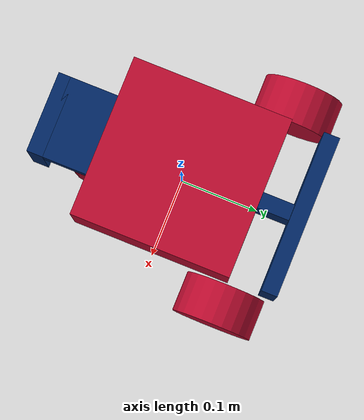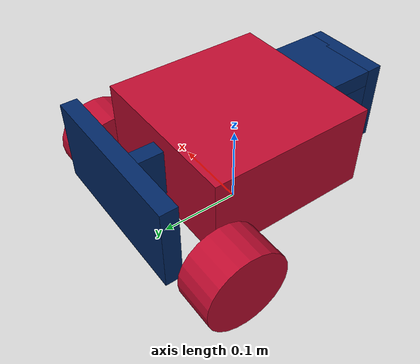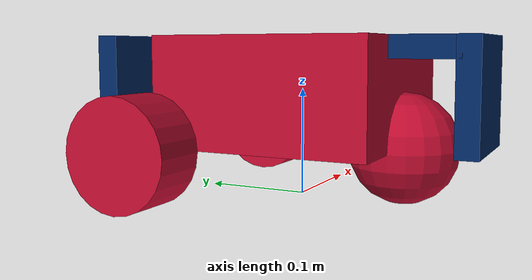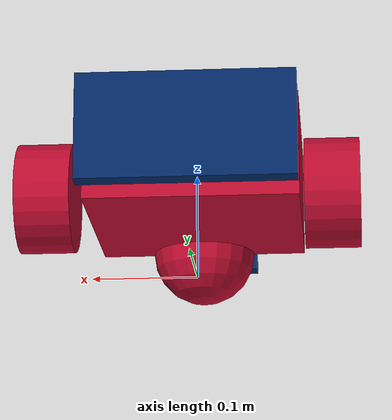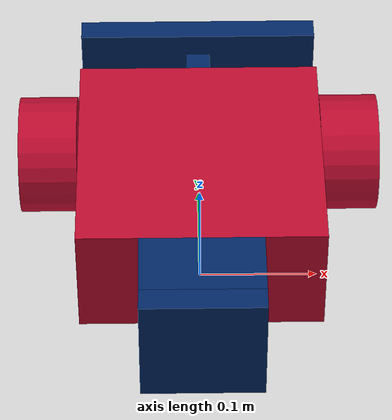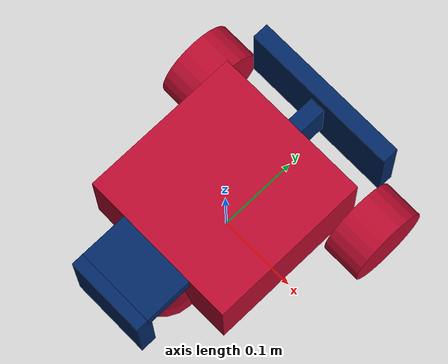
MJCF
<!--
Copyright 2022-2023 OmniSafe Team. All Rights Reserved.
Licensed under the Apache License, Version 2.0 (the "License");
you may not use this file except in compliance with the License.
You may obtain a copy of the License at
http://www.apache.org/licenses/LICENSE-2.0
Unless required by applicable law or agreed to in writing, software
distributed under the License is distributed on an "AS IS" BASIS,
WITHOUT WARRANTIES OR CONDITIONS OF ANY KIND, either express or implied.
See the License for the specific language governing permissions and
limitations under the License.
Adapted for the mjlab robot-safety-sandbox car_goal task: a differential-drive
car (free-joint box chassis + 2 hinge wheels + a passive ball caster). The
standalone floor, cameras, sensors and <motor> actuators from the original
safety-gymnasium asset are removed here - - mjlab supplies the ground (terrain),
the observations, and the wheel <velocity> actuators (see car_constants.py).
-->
<mujoco model="car">
  <default>
    <geom condim="6" density="5" size=".05" type="sphere"/>
    <joint damping=".001"/>
  </default>
  <worldbody>
    <body name="agent" pos="0 0 .1">
      <joint type="free" name="agent" damping="0"/>
      <geom name="chassis" type="box" size=".1 .1 .05" rgba="0.7412 0.0431 0.1843 1"/>
      <geom name="back_bumper" type="box" pos="0 .15 0" size=".1 .01 .05" rgba="0.0039 0.1529 0.3961 1"/>
      <geom name="back_connector" type="box" pos="0 .125 0" size=".01 .025 .03" rgba="0.0039 0.1529 0.3961 1"/>
      <geom name="front_bumper" type="box" pos="0 -.165 0" size=".05 .01 .05" rgba="0.0039 0.1529 0.3961 1"/>
      <geom name="front_connector" type="box" pos="0 -.13 .04" size=".05 .03 .01" rgba="0.0039 0.1529 0.3961 1"/>
      <body name="left" pos="-.1 .1 -.05">
        <joint type="hinge" name="left" axis="1 0 0"/>
        <geom type="cylinder" name="left" fromto="-.055 0 0 -0.005 0 0" rgba="0.7412 0.0431 0.1843 1"/>
      </body>
      <body name="right" pos=".1 .1 -.05">
        <joint type="hinge" name="right" axis="1 0 0"/>
        <geom type="cylinder" name="right" fromto="0.005 0 0 .055 0 0" rgba="0.7412 0.0431 0.1843 1"/>
      </body>
      <body name="rear" pos="0 -.1 -.05">
        <joint name="rear" type="ball"/>
        <geom name="rear" rgba="0.7412 0.0431 0.1843 1"/>
      </body>
    </body>
  </worldbody>
</mujoco>
